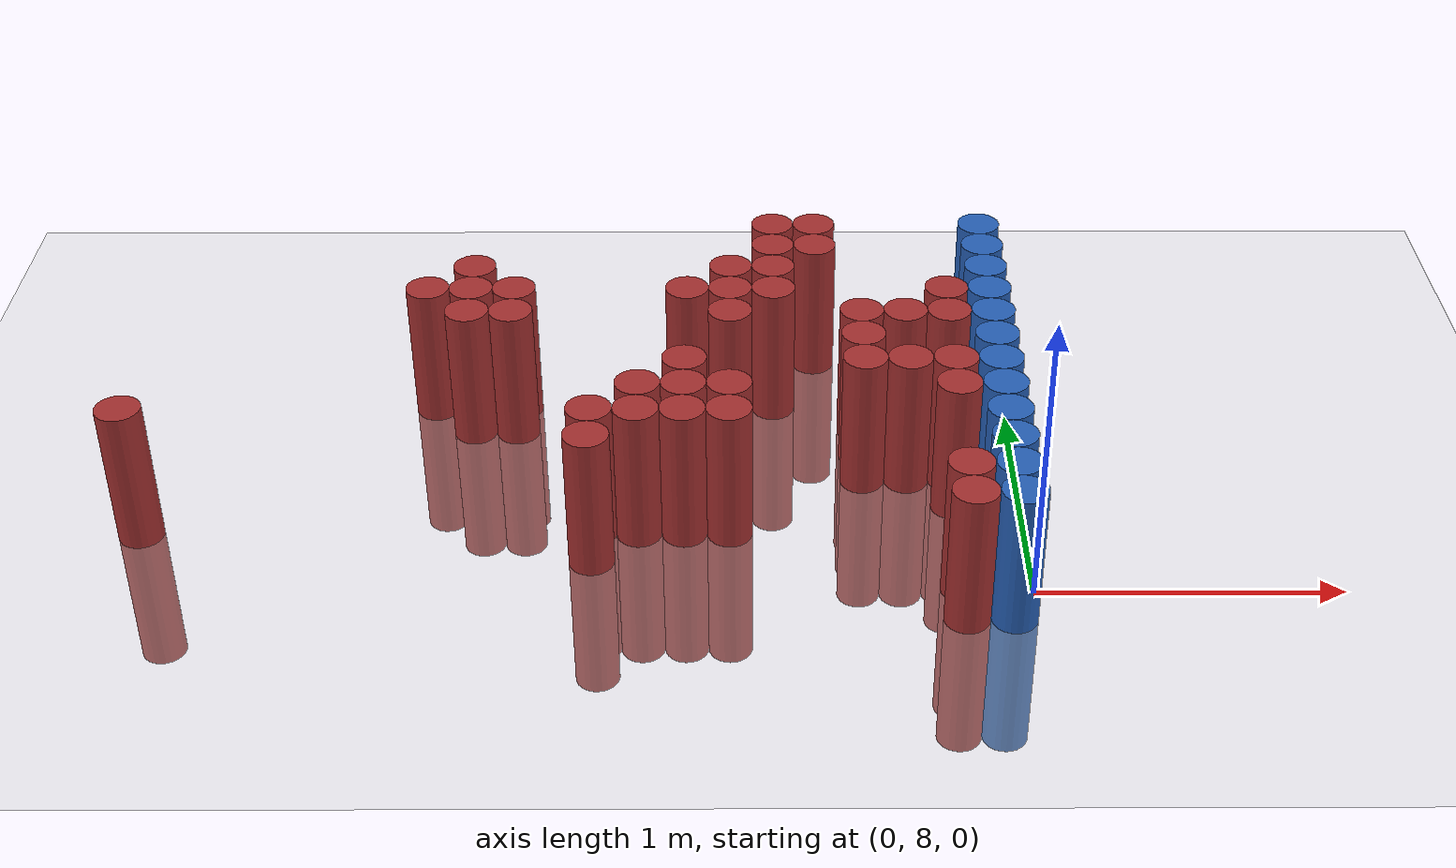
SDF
<sdf version="1.6">
 <world name="default">
  <model name="ground_plane">
   <static>1</static>
   <link name="link">
    <collision name="collision">
     <geometry><plane><normal>0 0 1</normal><size>100 100</size></plane></geometry>
     <surface><friction><ode><mu>100</mu><mu2>50</mu2></ode></friction></surface>
    </collision>
    <visual name="visual">
     <cast_shadows>0</cast_shadows>
     <geometry><plane><normal>0 0 1</normal><size>100 100</size></plane></geometry>
     <material>
      <script><uri>file://media/materials/scripts/gazebo.material</uri><name>Gazebo/Grey</name></script>
     </material>
    </visual>
   </link>
  </model>
  <model name="unit_cylinder_205">
   <static>1</static>
   <pose>-2.925000 8.325000 0.000000 0.000000 0.000000 0.000000</pose>
   <link name="link">
    <inertial>
     <mass>1</mass>
     <inertia><ixx>0.145833</ixx><ixy>0</ixy><ixz>0</ixz><iyy>0.145833</iyy><iyz>0</iyz><izz>0.125</izz></inertia>
    </inertial>
    <collision name="collision">
     <geometry><cylinder><radius>0.075000</radius><length>1</length></cylinder></geometry>
    </collision>
    <visual name="visual">
     <geometry><cylinder><radius>0.075000</radius><length>1</length></cylinder></geometry>
     <material>
      <ambient>0.648000 0.192000 0.192000 1</ambient>
      <diffuse>0.648000 0.192000 0.192000 1</diffuse>
     </material>
     <material>
      <script><name>Gazebo/Grey</name><uri>file://media/materials/scripts/gazebo.material</uri></script>
     </material>
    </visual>
   </link>
  </model>
  <model name="unit_cylinder_224">
   <static>1</static>
   <pose>-2.025000 9.075000 0.000000 0.000000 0.000000 0.000000</pose>
   <link name="link">
    <inertial>
     <mass>1</mass>
     <inertia><ixx>0.145833</ixx><ixy>0</ixy><ixz>0</ixz><iyy>0.145833</iyy><iyz>0</iyz><izz>0.125</izz></inertia>
    </inertial>
    <collision name="collision">
     <geometry><cylinder><radius>0.075000</radius><length>1</length></cylinder></geometry>
    </collision>
    <visual name="visual">
     <geometry><cylinder><radius>0.075000</radius><length>1</length></cylinder></geometry>
     <material>
      <ambient>0.648000 0.192000 0.192000 1</ambient>
      <diffuse>0.648000 0.192000 0.192000 1</diffuse>
     </material>
     <material>
      <script><name>Gazebo/Grey</name><uri>file://media/materials/scripts/gazebo.material</uri></script>
     </material>
    </visual>
   </link>
  </model>
  <model name="unit_cylinder_228">
   <static>1</static>
   <pose>-1.875000 8.925000 0.000000 0.000000 0.000000 0.000000</pose>
   <link name="link">
    <inertial>
     <mass>1</mass>
     <inertia><ixx>0.145833</ixx><ixy>0</ixy><ixz>0</ixz><iyy>0.145833</iyy><iyz>0</iyz><izz>0.125</izz></inertia>
    </inertial>
    <collision name="collision">
     <geometry><cylinder><radius>0.075000</radius><length>1</length></cylinder></geometry>
    </collision>
    <visual name="visual">
     <geometry><cylinder><radius>0.075000</radius><length>1</length></cylinder></geometry>
     <material>
      <ambient>0.648000 0.192000 0.192000 1</ambient>
      <diffuse>0.648000 0.192000 0.192000 1</diffuse>
     </material>
     <material>
      <script><name>Gazebo/Grey</name><uri>file://media/materials/scripts/gazebo.material</uri></script>
     </material>
    </visual>
   </link>
  </model>
  <model name="unit_cylinder_229">
   <static>1</static>
   <pose>-1.875000 9.075000 0.000000 0.000000 0.000000 0.000000</pose>
   <link name="link">
    <inertial>
     <mass>1</mass>
     <inertia><ixx>0.145833</ixx><ixy>0</ixy><ixz>0</ixz><iyy>0.145833</iyy><iyz>0</iyz><izz>0.125</izz></inertia>
    </inertial>
    <collision name="collision">
     <geometry><cylinder><radius>0.075000</radius><length>1</length></cylinder></geometry>
    </collision>
    <visual name="visual">
     <geometry><cylinder><radius>0.075000</radius><length>1</length></cylinder></geometry>
     <material>
      <ambient>0.648000 0.192000 0.192000 1</ambient>
      <diffuse>0.648000 0.192000 0.192000 1</diffuse>
     </material>
     <material>
      <script><name>Gazebo/Grey</name><uri>file://media/materials/scripts/gazebo.material</uri></script>
     </material>
    </visual>
   </link>
  </model>
  <model name="unit_cylinder_230">
   <static>1</static>
   <pose>-1.875000 9.225000 0.000000 0.000000 0.000000 0.000000</pose>
   <link name="link">
    <inertial>
     <mass>1</mass>
     <inertia><ixx>0.145833</ixx><ixy>0</ixy><ixz>0</ixz><iyy>0.145833</iyy><iyz>0</iyz><izz>0.125</izz></inertia>
    </inertial>
    <collision name="collision">
     <geometry><cylinder><radius>0.075000</radius><length>1</length></cylinder></geometry>
    </collision>
    <visual name="visual">
     <geometry><cylinder><radius>0.075000</radius><length>1</length></cylinder></geometry>
     <material>
      <ambient>0.648000 0.192000 0.192000 1</ambient>
      <diffuse>0.648000 0.192000 0.192000 1</diffuse>
     </material>
     <material>
      <script><name>Gazebo/Grey</name><uri>file://media/materials/scripts/gazebo.material</uri></script>
     </material>
    </visual>
   </link>
  </model>
  <model name="unit_cylinder_237">
   <static>1</static>
   <pose>-1.725000 8.925000 0.000000 0.000000 0.000000 0.000000</pose>
   <link name="link">
    <inertial>
     <mass>1</mass>
     <inertia><ixx>0.145833</ixx><ixy>0</ixy><ixz>0</ixz><iyy>0.145833</iyy><iyz>0</iyz><izz>0.125</izz></inertia>
    </inertial>
    <collision name="collision">
     <geometry><cylinder><radius>0.075000</radius><length>1</length></cylinder></geometry>
    </collision>
    <visual name="visual">
     <geometry><cylinder><radius>0.075000</radius><length>1</length></cylinder></geometry>
     <material>
      <ambient>0.648000 0.192000 0.192000 1</ambient>
      <diffuse>0.648000 0.192000 0.192000 1</diffuse>
     </material>
     <material>
      <script><name>Gazebo/Grey</name><uri>file://media/materials/scripts/gazebo.material</uri></script>
     </material>
    </visual>
   </link>
  </model>
  <model name="unit_cylinder_238">
   <static>1</static>
   <pose>-1.725000 9.075000 0.000000 0.000000 0.000000 0.000000</pose>
   <link name="link">
    <inertial>
     <mass>1</mass>
     <inertia><ixx>0.145833</ixx><ixy>0</ixy><ixz>0</ixz><iyy>0.145833</iyy><iyz>0</iyz><izz>0.125</izz></inertia>
    </inertial>
    <collision name="collision">
     <geometry><cylinder><radius>0.075000</radius><length>1</length></cylinder></geometry>
    </collision>
    <visual name="visual">
     <geometry><cylinder><radius>0.075000</radius><length>1</length></cylinder></geometry>
     <material>
      <ambient>0.648000 0.192000 0.192000 1</ambient>
      <diffuse>0.648000 0.192000 0.192000 1</diffuse>
     </material>
     <material>
      <script><name>Gazebo/Grey</name><uri>file://media/materials/scripts/gazebo.material</uri></script>
     </material>
    </visual>
   </link>
  </model>
  <model name="unit_cylinder_247">
   <static>1</static>
   <pose>-1.425000 8.175000 0.000000 0.000000 0.000000 0.000000</pose>
   <link name="link">
    <inertial>
     <mass>1</mass>
     <inertia><ixx>0.145833</ixx><ixy>0</ixy><ixz>0</ixz><iyy>0.145833</iyy><iyz>0</iyz><izz>0.125</izz></inertia>
    </inertial>
    <collision name="collision">
     <geometry><cylinder><radius>0.075000</radius><length>1</length></cylinder></geometry>
    </collision>
    <visual name="visual">
     <geometry><cylinder><radius>0.075000</radius><length>1</length></cylinder></geometry>
     <material>
      <ambient>0.648000 0.192000 0.192000 1</ambient>
      <diffuse>0.648000 0.192000 0.192000 1</diffuse>
     </material>
     <material>
      <script><name>Gazebo/Grey</name><uri>file://media/materials/scripts/gazebo.material</uri></script>
     </material>
    </visual>
   </link>
  </model>
  <model name="unit_cylinder_248">
   <static>1</static>
   <pose>-1.425000 8.325000 0.000000 0.000000 0.000000 0.000000</pose>
   <link name="link">
    <inertial>
     <mass>1</mass>
     <inertia><ixx>0.145833</ixx><ixy>0</ixy><ixz>0</ixz><iyy>0.145833</iyy><iyz>0</iyz><izz>0.125</izz></inertia>
    </inertial>
    <collision name="collision">
     <geometry><cylinder><radius>0.075000</radius><length>1</length></cylinder></geometry>
    </collision>
    <visual name="visual">
     <geometry><cylinder><radius>0.075000</radius><length>1</length></cylinder></geometry>
     <material>
      <ambient>0.648000 0.192000 0.192000 1</ambient>
      <diffuse>0.648000 0.192000 0.192000 1</diffuse>
     </material>
     <material>
      <script><name>Gazebo/Grey</name><uri>file://media/materials/scripts/gazebo.material</uri></script>
     </material>
    </visual>
   </link>
  </model>
  <model name="unit_cylinder_254">
   <static>1</static>
   <pose>-1.275000 8.325000 0.000000 0.000000 0.000000 0.000000</pose>
   <link name="link">
    <inertial>
     <mass>1</mass>
     <inertia><ixx>0.145833</ixx><ixy>0</ixy><ixz>0</ixz><iyy>0.145833</iyy><iyz>0</iyz><izz>0.125</izz></inertia>
    </inertial>
    <collision name="collision">
     <geometry><cylinder><radius>0.075000</radius><length>1</length></cylinder></geometry>
    </collision>
    <visual name="visual">
     <geometry><cylinder><radius>0.075000</radius><length>1</length></cylinder></geometry>
     <material>
      <ambient>0.648000 0.192000 0.192000 1</ambient>
      <diffuse>0.648000 0.192000 0.192000 1</diffuse>
     </material>
     <material>
      <script><name>Gazebo/Grey</name><uri>file://media/materials/scripts/gazebo.material</uri></script>
     </material>
    </visual>
   </link>
  </model>
  <model name="unit_cylinder_255">
   <static>1</static>
   <pose>-1.275000 8.475000 0.000000 0.000000 0.000000 0.000000</pose>
   <link name="link">
    <inertial>
     <mass>1</mass>
     <inertia><ixx>0.145833</ixx><ixy>0</ixy><ixz>0</ixz><iyy>0.145833</iyy><iyz>0</iyz><izz>0.125</izz></inertia>
    </inertial>
    <collision name="collision">
     <geometry><cylinder><radius>0.075000</radius><length>1</length></cylinder></geometry>
    </collision>
    <visual name="visual">
     <geometry><cylinder><radius>0.075000</radius><length>1</length></cylinder></geometry>
     <material>
      <ambient>0.648000 0.192000 0.192000 1</ambient>
      <diffuse>0.648000 0.192000 0.192000 1</diffuse>
     </material>
     <material>
      <script><name>Gazebo/Grey</name><uri>file://media/materials/scripts/gazebo.material</uri></script>
     </material>
    </visual>
   </link>
  </model>
  <model name="unit_cylinder_257">
   <static>1</static>
   <pose>-1.125000 8.325000 0.000000 0.000000 0.000000 0.000000</pose>
   <link name="link">
    <inertial>
     <mass>1</mass>
     <inertia><ixx>0.145833</ixx><ixy>0</ixy><ixz>0</ixz><iyy>0.145833</iyy><iyz>0</iyz><izz>0.125</izz></inertia>
    </inertial>
    <collision name="collision">
     <geometry><cylinder><radius>0.075000</radius><length>1</length></cylinder></geometry>
    </collision>
    <visual name="visual">
     <geometry><cylinder><radius>0.075000</radius><length>1</length></cylinder></geometry>
     <material>
      <ambient>0.648000 0.192000 0.192000 1</ambient>
      <diffuse>0.648000 0.192000 0.192000 1</diffuse>
     </material>
     <material>
      <script><name>Gazebo/Grey</name><uri>file://media/materials/scripts/gazebo.material</uri></script>
     </material>
    </visual>
   </link>
  </model>
  <model name="unit_cylinder_258">
   <static>1</static>
   <pose>-1.125000 8.475000 0.000000 0.000000 0.000000 0.000000</pose>
   <link name="link">
    <inertial>
     <mass>1</mass>
     <inertia><ixx>0.145833</ixx><ixy>0</ixy><ixz>0</ixz><iyy>0.145833</iyy><iyz>0</iyz><izz>0.125</izz></inertia>
    </inertial>
    <collision name="collision">
     <geometry><cylinder><radius>0.075000</radius><length>1</length></cylinder></geometry>
    </collision>
    <visual name="visual">
     <geometry><cylinder><radius>0.075000</radius><length>1</length></cylinder></geometry>
     <material>
      <ambient>0.648000 0.192000 0.192000 1</ambient>
      <diffuse>0.648000 0.192000 0.192000 1</diffuse>
     </material>
     <material>
      <script><name>Gazebo/Grey</name><uri>file://media/materials/scripts/gazebo.material</uri></script>
     </material>
    </visual>
   </link>
  </model>
  <model name="unit_cylinder_259">
   <static>1</static>
   <pose>-1.125000 8.625000 0.000000 0.000000 0.000000 0.000000</pose>
   <link name="link">
    <inertial>
     <mass>1</mass>
     <inertia><ixx>0.145833</ixx><ixy>0</ixy><ixz>0</ixz><iyy>0.145833</iyy><iyz>0</iyz><izz>0.125</izz></inertia>
    </inertial>
    <collision name="collision">
     <geometry><cylinder><radius>0.075000</radius><length>1</length></cylinder></geometry>
    </collision>
    <visual name="visual">
     <geometry><cylinder><radius>0.075000</radius><length>1</length></cylinder></geometry>
     <material>
      <ambient>0.648000 0.192000 0.192000 1</ambient>
      <diffuse>0.648000 0.192000 0.192000 1</diffuse>
     </material>
     <material>
      <script><name>Gazebo/Grey</name><uri>file://media/materials/scripts/gazebo.material</uri></script>
     </material>
    </visual>
   </link>
  </model>
  <model name="unit_cylinder_260">
   <static>1</static>
   <pose>-1.125000 9.075000 0.000000 0.000000 0.000000 0.000000</pose>
   <link name="link">
    <inertial>
     <mass>1</mass>
     <inertia><ixx>0.145833</ixx><ixy>0</ixy><ixz>0</ixz><iyy>0.145833</iyy><iyz>0</iyz><izz>0.125</izz></inertia>
    </inertial>
    <collision name="collision">
     <geometry><cylinder><radius>0.075000</radius><length>1</length></cylinder></geometry>
    </collision>
    <visual name="visual">
     <geometry><cylinder><radius>0.075000</radius><length>1</length></cylinder></geometry>
     <material>
      <ambient>0.648000 0.192000 0.192000 1</ambient>
      <diffuse>0.648000 0.192000 0.192000 1</diffuse>
     </material>
     <material>
      <script><name>Gazebo/Grey</name><uri>file://media/materials/scripts/gazebo.material</uri></script>
     </material>
    </visual>
   </link>
  </model>
  <model name="unit_cylinder_265">
   <static>1</static>
   <pose>-0.975000 8.325000 0.000000 0.000000 0.000000 0.000000</pose>
   <link name="link">
    <inertial>
     <mass>1</mass>
     <inertia><ixx>0.145833</ixx><ixy>0</ixy><ixz>0</ixz><iyy>0.145833</iyy><iyz>0</iyz><izz>0.125</izz></inertia>
    </inertial>
    <collision name="collision">
     <geometry><cylinder><radius>0.075000</radius><length>1</length></cylinder></geometry>
    </collision>
    <visual name="visual">
     <geometry><cylinder><radius>0.075000</radius><length>1</length></cylinder></geometry>
     <material>
      <ambient>0.648000 0.192000 0.192000 1</ambient>
      <diffuse>0.648000 0.192000 0.192000 1</diffuse>
     </material>
     <material>
      <script><name>Gazebo/Grey</name><uri>file://media/materials/scripts/gazebo.material</uri></script>
     </material>
    </visual>
   </link>
  </model>
  <model name="unit_cylinder_266">
   <static>1</static>
   <pose>-0.975000 8.475000 0.000000 0.000000 0.000000 0.000000</pose>
   <link name="link">
    <inertial>
     <mass>1</mass>
     <inertia><ixx>0.145833</ixx><ixy>0</ixy><ixz>0</ixz><iyy>0.145833</iyy><iyz>0</iyz><izz>0.125</izz></inertia>
    </inertial>
    <collision name="collision">
     <geometry><cylinder><radius>0.075000</radius><length>1</length></cylinder></geometry>
    </collision>
    <visual name="visual">
     <geometry><cylinder><radius>0.075000</radius><length>1</length></cylinder></geometry>
     <material>
      <ambient>0.648000 0.192000 0.192000 1</ambient>
      <diffuse>0.648000 0.192000 0.192000 1</diffuse>
     </material>
     <material>
      <script><name>Gazebo/Grey</name><uri>file://media/materials/scripts/gazebo.material</uri></script>
     </material>
    </visual>
   </link>
  </model>
  <model name="unit_cylinder_267">
   <static>1</static>
   <pose>-0.975000 8.925000 0.000000 0.000000 0.000000 0.000000</pose>
   <link name="link">
    <inertial>
     <mass>1</mass>
     <inertia><ixx>0.145833</ixx><ixy>0</ixy><ixz>0</ixz><iyy>0.145833</iyy><iyz>0</iyz><izz>0.125</izz></inertia>
    </inertial>
    <collision name="collision">
     <geometry><cylinder><radius>0.075000</radius><length>1</length></cylinder></geometry>
    </collision>
    <visual name="visual">
     <geometry><cylinder><radius>0.075000</radius><length>1</length></cylinder></geometry>
     <material>
      <ambient>0.648000 0.192000 0.192000 1</ambient>
      <diffuse>0.648000 0.192000 0.192000 1</diffuse>
     </material>
     <material>
      <script><name>Gazebo/Grey</name><uri>file://media/materials/scripts/gazebo.material</uri></script>
     </material>
    </visual>
   </link>
  </model>
  <model name="unit_cylinder_268">
   <static>1</static>
   <pose>-0.975000 9.075000 0.000000 0.000000 0.000000 0.000000</pose>
   <link name="link">
    <inertial>
     <mass>1</mass>
     <inertia><ixx>0.145833</ixx><ixy>0</ixy><ixz>0</ixz><iyy>0.145833</iyy><iyz>0</iyz><izz>0.125</izz></inertia>
    </inertial>
    <collision name="collision">
     <geometry><cylinder><radius>0.075000</radius><length>1</length></cylinder></geometry>
    </collision>
    <visual name="visual">
     <geometry><cylinder><radius>0.075000</radius><length>1</length></cylinder></geometry>
     <material>
      <ambient>0.648000 0.192000 0.192000 1</ambient>
      <diffuse>0.648000 0.192000 0.192000 1</diffuse>
     </material>
     <material>
      <script><name>Gazebo/Grey</name><uri>file://media/materials/scripts/gazebo.material</uri></script>
     </material>
    </visual>
   </link>
  </model>
  <model name="unit_cylinder_269">
   <static>1</static>
   <pose>-0.975000 9.225000 0.000000 0.000000 0.000000 0.000000</pose>
   <link name="link">
    <inertial>
     <mass>1</mass>
     <inertia><ixx>0.145833</ixx><ixy>0</ixy><ixz>0</ixz><iyy>0.145833</iyy><iyz>0</iyz><izz>0.125</izz></inertia>
    </inertial>
    <collision name="collision">
     <geometry><cylinder><radius>0.075000</radius><length>1</length></cylinder></geometry>
    </collision>
    <visual name="visual">
     <geometry><cylinder><radius>0.075000</radius><length>1</length></cylinder></geometry>
     <material>
      <ambient>0.648000 0.192000 0.192000 1</ambient>
      <diffuse>0.648000 0.192000 0.192000 1</diffuse>
     </material>
     <material>
      <script><name>Gazebo/Grey</name><uri>file://media/materials/scripts/gazebo.material</uri></script>
     </material>
    </visual>
   </link>
  </model>
  <model name="unit_cylinder_273">
   <static>1</static>
   <pose>-0.825000 9.075000 0.000000 0.000000 0.000000 0.000000</pose>
   <link name="link">
    <inertial>
     <mass>1</mass>
     <inertia><ixx>0.145833</ixx><ixy>0</ixy><ixz>0</ixz><iyy>0.145833</iyy><iyz>0</iyz><izz>0.125</izz></inertia>
    </inertial>
    <collision name="collision">
     <geometry><cylinder><radius>0.075000</radius><length>1</length></cylinder></geometry>
    </collision>
    <visual name="visual">
     <geometry><cylinder><radius>0.075000</radius><length>1</length></cylinder></geometry>
     <material>
      <ambient>0.648000 0.192000 0.192000 1</ambient>
      <diffuse>0.648000 0.192000 0.192000 1</diffuse>
     </material>
     <material>
      <script><name>Gazebo/Grey</name><uri>file://media/materials/scripts/gazebo.material</uri></script>
     </material>
    </visual>
   </link>
  </model>
  <model name="unit_cylinder_274">
   <static>1</static>
   <pose>-0.825000 9.225000 0.000000 0.000000 0.000000 0.000000</pose>
   <link name="link">
    <inertial>
     <mass>1</mass>
     <inertia><ixx>0.145833</ixx><ixy>0</ixy><ixz>0</ixz><iyy>0.145833</iyy><iyz>0</iyz><izz>0.125</izz></inertia>
    </inertial>
    <collision name="collision">
     <geometry><cylinder><radius>0.075000</radius><length>1</length></cylinder></geometry>
    </collision>
    <visual name="visual">
     <geometry><cylinder><radius>0.075000</radius><length>1</length></cylinder></geometry>
     <material>
      <ambient>0.648000 0.192000 0.192000 1</ambient>
      <diffuse>0.648000 0.192000 0.192000 1</diffuse>
     </material>
     <material>
      <script><name>Gazebo/Grey</name><uri>file://media/materials/scripts/gazebo.material</uri></script>
     </material>
    </visual>
   </link>
  </model>
  <model name="unit_cylinder_275">
   <static>1</static>
   <pose>-0.825000 9.375000 0.000000 0.000000 0.000000 0.000000</pose>
   <link name="link">
    <inertial>
     <mass>1</mass>
     <inertia><ixx>0.145833</ixx><ixy>0</ixy><ixz>0</ixz><iyy>0.145833</iyy><iyz>0</iyz><izz>0.125</izz></inertia>
    </inertial>
    <collision name="collision">
     <geometry><cylinder><radius>0.075000</radius><length>1</length></cylinder></geometry>
    </collision>
    <visual name="visual">
     <geometry><cylinder><radius>0.075000</radius><length>1</length></cylinder></geometry>
     <material>
      <ambient>0.648000 0.192000 0.192000 1</ambient>
      <diffuse>0.648000 0.192000 0.192000 1</diffuse>
     </material>
     <material>
      <script><name>Gazebo/Grey</name><uri>file://media/materials/scripts/gazebo.material</uri></script>
     </material>
    </visual>
   </link>
  </model>
  <model name="unit_cylinder_276">
   <static>1</static>
   <pose>-0.825000 9.525000 0.000000 0.000000 0.000000 0.000000</pose>
   <link name="link">
    <inertial>
     <mass>1</mass>
     <inertia><ixx>0.145833</ixx><ixy>0</ixy><ixz>0</ixz><iyy>0.145833</iyy><iyz>0</iyz><izz>0.125</izz></inertia>
    </inertial>
    <collision name="collision">
     <geometry><cylinder><radius>0.075000</radius><length>1</length></cylinder></geometry>
    </collision>
    <visual name="visual">
     <geometry><cylinder><radius>0.075000</radius><length>1</length></cylinder></geometry>
     <material>
      <ambient>0.648000 0.192000 0.192000 1</ambient>
      <diffuse>0.648000 0.192000 0.192000 1</diffuse>
     </material>
     <material>
      <script><name>Gazebo/Grey</name><uri>file://media/materials/scripts/gazebo.material</uri></script>
     </material>
    </visual>
   </link>
  </model>
  <model name="unit_cylinder_278">
   <static>1</static>
   <pose>-0.675000 9.375000 0.000000 0.000000 0.000000 0.000000</pose>
   <link name="link">
    <inertial>
     <mass>1</mass>
     <inertia><ixx>0.145833</ixx><ixy>0</ixy><ixz>0</ixz><iyy>0.145833</iyy><iyz>0</iyz><izz>0.125</izz></inertia>
    </inertial>
    <collision name="collision">
     <geometry><cylinder><radius>0.075000</radius><length>1</length></cylinder></geometry>
    </collision>
    <visual name="visual">
     <geometry><cylinder><radius>0.075000</radius><length>1</length></cylinder></geometry>
     <material>
      <ambient>0.648000 0.192000 0.192000 1</ambient>
      <diffuse>0.648000 0.192000 0.192000 1</diffuse>
     </material>
     <material>
      <script><name>Gazebo/Grey</name><uri>file://media/materials/scripts/gazebo.material</uri></script>
     </material>
    </visual>
   </link>
  </model>
  <model name="unit_cylinder_279">
   <static>1</static>
   <pose>-0.675000 9.525000 0.000000 0.000000 0.000000 0.000000</pose>
   <link name="link">
    <inertial>
     <mass>1</mass>
     <inertia><ixx>0.145833</ixx><ixy>0</ixy><ixz>0</ixz><iyy>0.145833</iyy><iyz>0</iyz><izz>0.125</izz></inertia>
    </inertial>
    <collision name="collision">
     <geometry><cylinder><radius>0.075000</radius><length>1</length></cylinder></geometry>
    </collision>
    <visual name="visual">
     <geometry><cylinder><radius>0.075000</radius><length>1</length></cylinder></geometry>
     <material>
      <ambient>0.648000 0.192000 0.192000 1</ambient>
      <diffuse>0.648000 0.192000 0.192000 1</diffuse>
     </material>
     <material>
      <script><name>Gazebo/Grey</name><uri>file://media/materials/scripts/gazebo.material</uri></script>
     </material>
    </visual>
   </link>
  </model>
  <model name="unit_cylinder_282">
   <static>1</static>
   <pose>-0.525000 8.625000 0.000000 0.000000 0.000000 0.000000</pose>
   <link name="link">
    <inertial>
     <mass>1</mass>
     <inertia><ixx>0.145833</ixx><ixy>0</ixy><ixz>0</ixz><iyy>0.145833</iyy><iyz>0</iyz><izz>0.125</izz></inertia>
    </inertial>
    <collision name="collision">
     <geometry><cylinder><radius>0.075000</radius><length>1</length></cylinder></geometry>
    </collision>
    <visual name="visual">
     <geometry><cylinder><radius>0.075000</radius><length>1</length></cylinder></geometry>
     <material>
      <ambient>0.648000 0.192000 0.192000 1</ambient>
      <diffuse>0.648000 0.192000 0.192000 1</diffuse>
     </material>
     <material>
      <script><name>Gazebo/Grey</name><uri>file://media/materials/scripts/gazebo.material</uri></script>
     </material>
    </visual>
   </link>
  </model>
  <model name="unit_cylinder_283">
   <static>1</static>
   <pose>-0.525000 8.775000 0.000000 0.000000 0.000000 0.000000</pose>
   <link name="link">
    <inertial>
     <mass>1</mass>
     <inertia><ixx>0.145833</ixx><ixy>0</ixy><ixz>0</ixz><iyy>0.145833</iyy><iyz>0</iyz><izz>0.125</izz></inertia>
    </inertial>
    <collision name="collision">
     <geometry><cylinder><radius>0.075000</radius><length>1</length></cylinder></geometry>
    </collision>
    <visual name="visual">
     <geometry><cylinder><radius>0.075000</radius><length>1</length></cylinder></geometry>
     <material>
      <ambient>0.648000 0.192000 0.192000 1</ambient>
      <diffuse>0.648000 0.192000 0.192000 1</diffuse>
     </material>
     <material>
      <script><name>Gazebo/Grey</name><uri>file://media/materials/scripts/gazebo.material</uri></script>
     </material>
    </visual>
   </link>
  </model>
  <model name="unit_cylinder_284">
   <static>1</static>
   <pose>-0.525000 8.925000 0.000000 0.000000 0.000000 0.000000</pose>
   <link name="link">
    <inertial>
     <mass>1</mass>
     <inertia><ixx>0.145833</ixx><ixy>0</ixy><ixz>0</ixz><iyy>0.145833</iyy><iyz>0</iyz><izz>0.125</izz></inertia>
    </inertial>
    <collision name="collision">
     <geometry><cylinder><radius>0.075000</radius><length>1</length></cylinder></geometry>
    </collision>
    <visual name="visual">
     <geometry><cylinder><radius>0.075000</radius><length>1</length></cylinder></geometry>
     <material>
      <ambient>0.648000 0.192000 0.192000 1</ambient>
      <diffuse>0.648000 0.192000 0.192000 1</diffuse>
     </material>
     <material>
      <script><name>Gazebo/Grey</name><uri>file://media/materials/scripts/gazebo.material</uri></script>
     </material>
    </visual>
   </link>
  </model>
  <model name="unit_cylinder_292">
   <static>1</static>
   <pose>-0.375000 8.625000 0.000000 0.000000 0.000000 0.000000</pose>
   <link name="link">
    <inertial>
     <mass>1</mass>
     <inertia><ixx>0.145833</ixx><ixy>0</ixy><ixz>0</ixz><iyy>0.145833</iyy><iyz>0</iyz><izz>0.125</izz></inertia>
    </inertial>
    <collision name="collision">
     <geometry><cylinder><radius>0.075000</radius><length>1</length></cylinder></geometry>
    </collision>
    <visual name="visual">
     <geometry><cylinder><radius>0.075000</radius><length>1</length></cylinder></geometry>
     <material>
      <ambient>0.648000 0.192000 0.192000 1</ambient>
      <diffuse>0.648000 0.192000 0.192000 1</diffuse>
     </material>
     <material>
      <script><name>Gazebo/Grey</name><uri>file://media/materials/scripts/gazebo.material</uri></script>
     </material>
    </visual>
   </link>
  </model>
  <model name="unit_cylinder_293">
   <static>1</static>
   <pose>-0.375000 8.925000 0.000000 0.000000 0.000000 0.000000</pose>
   <link name="link">
    <inertial>
     <mass>1</mass>
     <inertia><ixx>0.145833</ixx><ixy>0</ixy><ixz>0</ixz><iyy>0.145833</iyy><iyz>0</iyz><izz>0.125</izz></inertia>
    </inertial>
    <collision name="collision">
     <geometry><cylinder><radius>0.075000</radius><length>1</length></cylinder></geometry>
    </collision>
    <visual name="visual">
     <geometry><cylinder><radius>0.075000</radius><length>1</length></cylinder></geometry>
     <material>
      <ambient>0.648000 0.192000 0.192000 1</ambient>
      <diffuse>0.648000 0.192000 0.192000 1</diffuse>
     </material>
     <material>
      <script><name>Gazebo/Grey</name><uri>file://media/materials/scripts/gazebo.material</uri></script>
     </material>
    </visual>
   </link>
  </model>
  <model name="unit_cylinder_306">
   <static>1</static>
   <pose>-0.225000 7.875000 0.000000 0.000000 0.000000 0.000000</pose>
   <link name="link">
    <inertial>
     <mass>1</mass>
     <inertia><ixx>0.145833</ixx><ixy>0</ixy><ixz>0</ixz><iyy>0.145833</iyy><iyz>0</iyz><izz>0.125</izz></inertia>
    </inertial>
    <collision name="collision">
     <geometry><cylinder><radius>0.075000</radius><length>1</length></cylinder></geometry>
    </collision>
    <visual name="visual">
     <geometry><cylinder><radius>0.075000</radius><length>1</length></cylinder></geometry>
     <material>
      <ambient>0.648000 0.192000 0.192000 1</ambient>
      <diffuse>0.648000 0.192000 0.192000 1</diffuse>
     </material>
     <material>
      <script><name>Gazebo/Grey</name><uri>file://media/materials/scripts/gazebo.material</uri></script>
     </material>
    </visual>
   </link>
  </model>
  <model name="unit_cylinder_307">
   <static>1</static>
   <pose>-0.225000 8.025000 0.000000 0.000000 0.000000 0.000000</pose>
   <link name="link">
    <inertial>
     <mass>1</mass>
     <inertia><ixx>0.145833</ixx><ixy>0</ixy><ixz>0</ixz><iyy>0.145833</iyy><iyz>0</iyz><izz>0.125</izz></inertia>
    </inertial>
    <collision name="collision">
     <geometry><cylinder><radius>0.075000</radius><length>1</length></cylinder></geometry>
    </collision>
    <visual name="visual">
     <geometry><cylinder><radius>0.075000</radius><length>1</length></cylinder></geometry>
     <material>
      <ambient>0.648000 0.192000 0.192000 1</ambient>
      <diffuse>0.648000 0.192000 0.192000 1</diffuse>
     </material>
     <material>
      <script><name>Gazebo/Grey</name><uri>file://media/materials/scripts/gazebo.material</uri></script>
     </material>
    </visual>
   </link>
  </model>
  <model name="unit_cylinder_308">
   <static>1</static>
   <pose>-0.225000 8.475000 0.000000 0.000000 0.000000 0.000000</pose>
   <link name="link">
    <inertial>
     <mass>1</mass>
     <inertia><ixx>0.145833</ixx><ixy>0</ixy><ixz>0</ixz><iyy>0.145833</iyy><iyz>0</iyz><izz>0.125</izz></inertia>
    </inertial>
    <collision name="collision">
     <geometry><cylinder><radius>0.075000</radius><length>1</length></cylinder></geometry>
    </collision>
    <visual name="visual">
     <geometry><cylinder><radius>0.075000</radius><length>1</length></cylinder></geometry>
     <material>
      <ambient>0.648000 0.192000 0.192000 1</ambient>
      <diffuse>0.648000 0.192000 0.192000 1</diffuse>
     </material>
     <material>
      <script><name>Gazebo/Grey</name><uri>file://media/materials/scripts/gazebo.material</uri></script>
     </material>
    </visual>
   </link>
  </model>
  <model name="unit_cylinder_309">
   <static>1</static>
   <pose>-0.225000 8.625000 0.000000 0.000000 0.000000 0.000000</pose>
   <link name="link">
    <inertial>
     <mass>1</mass>
     <inertia><ixx>0.145833</ixx><ixy>0</ixy><ixz>0</ixz><iyy>0.145833</iyy><iyz>0</iyz><izz>0.125</izz></inertia>
    </inertial>
    <collision name="collision">
     <geometry><cylinder><radius>0.075000</radius><length>1</length></cylinder></geometry>
    </collision>
    <visual name="visual">
     <geometry><cylinder><radius>0.075000</radius><length>1</length></cylinder></geometry>
     <material>
      <ambient>0.648000 0.192000 0.192000 1</ambient>
      <diffuse>0.648000 0.192000 0.192000 1</diffuse>
     </material>
     <material>
      <script><name>Gazebo/Grey</name><uri>file://media/materials/scripts/gazebo.material</uri></script>
     </material>
    </visual>
   </link>
  </model>
  <model name="unit_cylinder_310">
   <static>1</static>
   <pose>-0.225000 8.925000 0.000000 0.000000 0.000000 0.000000</pose>
   <link name="link">
    <inertial>
     <mass>1</mass>
     <inertia><ixx>0.145833</ixx><ixy>0</ixy><ixz>0</ixz><iyy>0.145833</iyy><iyz>0</iyz><izz>0.125</izz></inertia>
    </inertial>
    <collision name="collision">
     <geometry><cylinder><radius>0.075000</radius><length>1</length></cylinder></geometry>
    </collision>
    <visual name="visual">
     <geometry><cylinder><radius>0.075000</radius><length>1</length></cylinder></geometry>
     <material>
      <ambient>0.648000 0.192000 0.192000 1</ambient>
      <diffuse>0.648000 0.192000 0.192000 1</diffuse>
     </material>
     <material>
      <script><name>Gazebo/Grey</name><uri>file://media/materials/scripts/gazebo.material</uri></script>
     </material>
    </visual>
   </link>
  </model>
  <model name="unit_cylinder_311">
   <static>1</static>
   <pose>-0.225000 9.075000 0.000000 0.000000 0.000000 0.000000</pose>
   <link name="link">
    <inertial>
     <mass>1</mass>
     <inertia><ixx>0.145833</ixx><ixy>0</ixy><ixz>0</ixz><iyy>0.145833</iyy><iyz>0</iyz><izz>0.125</izz></inertia>
    </inertial>
    <collision name="collision">
     <geometry><cylinder><radius>0.075000</radius><length>1</length></cylinder></geometry>
    </collision>
    <visual name="visual">
     <geometry><cylinder><radius>0.075000</radius><length>1</length></cylinder></geometry>
     <material>
      <ambient>0.648000 0.192000 0.192000 1</ambient>
      <diffuse>0.648000 0.192000 0.192000 1</diffuse>
     </material>
     <material>
      <script><name>Gazebo/Grey</name><uri>file://media/materials/scripts/gazebo.material</uri></script>
     </material>
    </visual>
   </link>
  </model>
  <model name="unit_cylinder_330">
   <static>1</static>
   <pose>-0.075000 7.875000 0.000000 0.000000 0.000000 0.000000</pose>
   <link name="link">
    <inertial>
     <mass>1</mass>
     <inertia><ixx>0.145833</ixx><ixy>0</ixy><ixz>0</ixz><iyy>0.145833</iyy><iyz>0</iyz><izz>0.125</izz></inertia>
    </inertial>
    <collision name="collision">
     <geometry><cylinder><radius>0.075000</radius><length>1</length></cylinder></geometry>
    </collision>
    <visual name="visual">
     <geometry><cylinder><radius>0.075000</radius><length>1</length></cylinder></geometry>
     <material>
      <ambient>0.152000 0.379000 0.720000 1</ambient>
      <diffuse>0.152000 0.379000 0.720000 1</diffuse>
     </material>
     <material>
      <script><name>Gazebo/Grey</name><uri>file://media/materials/scripts/gazebo.material</uri></script>
     </material>
    </visual>
   </link>
  </model>
  <model name="unit_cylinder_331">
   <static>1</static>
   <pose>-0.075000 8.025000 0.000000 0.000000 0.000000 0.000000</pose>
   <link name="link">
    <inertial>
     <mass>1</mass>
     <inertia><ixx>0.145833</ixx><ixy>0</ixy><ixz>0</ixz><iyy>0.145833</iyy><iyz>0</iyz><izz>0.125</izz></inertia>
    </inertial>
    <collision name="collision">
     <geometry><cylinder><radius>0.075000</radius><length>1</length></cylinder></geometry>
    </collision>
    <visual name="visual">
     <geometry><cylinder><radius>0.075000</radius><length>1</length></cylinder></geometry>
     <material>
      <ambient>0.152000 0.379000 0.720000 1</ambient>
      <diffuse>0.152000 0.379000 0.720000 1</diffuse>
     </material>
     <material>
      <script><name>Gazebo/Grey</name><uri>file://media/materials/scripts/gazebo.material</uri></script>
     </material>
    </visual>
   </link>
  </model>
  <model name="unit_cylinder_332">
   <static>1</static>
   <pose>-0.075000 8.175000 0.000000 0.000000 0.000000 0.000000</pose>
   <link name="link">
    <inertial>
     <mass>1</mass>
     <inertia><ixx>0.145833</ixx><ixy>0</ixy><ixz>0</ixz><iyy>0.145833</iyy><iyz>0</iyz><izz>0.125</izz></inertia>
    </inertial>
    <collision name="collision">
     <geometry><cylinder><radius>0.075000</radius><length>1</length></cylinder></geometry>
    </collision>
    <visual name="visual">
     <geometry><cylinder><radius>0.075000</radius><length>1</length></cylinder></geometry>
     <material>
      <ambient>0.152000 0.379000 0.720000 1</ambient>
      <diffuse>0.152000 0.379000 0.720000 1</diffuse>
     </material>
     <material>
      <script><name>Gazebo/Grey</name><uri>file://media/materials/scripts/gazebo.material</uri></script>
     </material>
    </visual>
   </link>
  </model>
  <model name="unit_cylinder_333">
   <static>1</static>
   <pose>-0.075000 8.325000 0.000000 0.000000 0.000000 0.000000</pose>
   <link name="link">
    <inertial>
     <mass>1</mass>
     <inertia><ixx>0.145833</ixx><ixy>0</ixy><ixz>0</ixz><iyy>0.145833</iyy><iyz>0</iyz><izz>0.125</izz></inertia>
    </inertial>
    <collision name="collision">
     <geometry><cylinder><radius>0.075000</radius><length>1</length></cylinder></geometry>
    </collision>
    <visual name="visual">
     <geometry><cylinder><radius>0.075000</radius><length>1</length></cylinder></geometry>
     <material>
      <ambient>0.152000 0.379000 0.720000 1</ambient>
      <diffuse>0.152000 0.379000 0.720000 1</diffuse>
     </material>
     <material>
      <script><name>Gazebo/Grey</name><uri>file://media/materials/scripts/gazebo.material</uri></script>
     </material>
    </visual>
   </link>
  </model>
  <model name="unit_cylinder_334">
   <static>1</static>
   <pose>-0.075000 8.475000 0.000000 0.000000 0.000000 0.000000</pose>
   <link name="link">
    <inertial>
     <mass>1</mass>
     <inertia><ixx>0.145833</ixx><ixy>0</ixy><ixz>0</ixz><iyy>0.145833</iyy><iyz>0</iyz><izz>0.125</izz></inertia>
    </inertial>
    <collision name="collision">
     <geometry><cylinder><radius>0.075000</radius><length>1</length></cylinder></geometry>
    </collision>
    <visual name="visual">
     <geometry><cylinder><radius>0.075000</radius><length>1</length></cylinder></geometry>
     <material>
      <ambient>0.152000 0.379000 0.720000 1</ambient>
      <diffuse>0.152000 0.379000 0.720000 1</diffuse>
     </material>
     <material>
      <script><name>Gazebo/Grey</name><uri>file://media/materials/scripts/gazebo.material</uri></script>
     </material>
    </visual>
   </link>
  </model>
  <model name="unit_cylinder_335">
   <static>1</static>
   <pose>-0.075000 8.625000 0.000000 0.000000 0.000000 0.000000</pose>
   <link name="link">
    <inertial>
     <mass>1</mass>
     <inertia><ixx>0.145833</ixx><ixy>0</ixy><ixz>0</ixz><iyy>0.145833</iyy><iyz>0</iyz><izz>0.125</izz></inertia>
    </inertial>
    <collision name="collision">
     <geometry><cylinder><radius>0.075000</radius><length>1</length></cylinder></geometry>
    </collision>
    <visual name="visual">
     <geometry><cylinder><radius>0.075000</radius><length>1</length></cylinder></geometry>
     <material>
      <ambient>0.152000 0.379000 0.720000 1</ambient>
      <diffuse>0.152000 0.379000 0.720000 1</diffuse>
     </material>
     <material>
      <script><name>Gazebo/Grey</name><uri>file://media/materials/scripts/gazebo.material</uri></script>
     </material>
    </visual>
   </link>
  </model>
  <model name="unit_cylinder_336">
   <static>1</static>
   <pose>-0.075000 8.775000 0.000000 0.000000 0.000000 0.000000</pose>
   <link name="link">
    <inertial>
     <mass>1</mass>
     <inertia><ixx>0.145833</ixx><ixy>0</ixy><ixz>0</ixz><iyy>0.145833</iyy><iyz>0</iyz><izz>0.125</izz></inertia>
    </inertial>
    <collision name="collision">
     <geometry><cylinder><radius>0.075000</radius><length>1</length></cylinder></geometry>
    </collision>
    <visual name="visual">
     <geometry><cylinder><radius>0.075000</radius><length>1</length></cylinder></geometry>
     <material>
      <ambient>0.152000 0.379000 0.720000 1</ambient>
      <diffuse>0.152000 0.379000 0.720000 1</diffuse>
     </material>
     <material>
      <script><name>Gazebo/Grey</name><uri>file://media/materials/scripts/gazebo.material</uri></script>
     </material>
    </visual>
   </link>
  </model>
  <model name="unit_cylinder_337">
   <static>1</static>
   <pose>-0.075000 8.925000 0.000000 0.000000 0.000000 0.000000</pose>
   <link name="link">
    <inertial>
     <mass>1</mass>
     <inertia><ixx>0.145833</ixx><ixy>0</ixy><ixz>0</ixz><iyy>0.145833</iyy><iyz>0</iyz><izz>0.125</izz></inertia>
    </inertial>
    <collision name="collision">
     <geometry><cylinder><radius>0.075000</radius><length>1</length></cylinder></geometry>
    </collision>
    <visual name="visual">
     <geometry><cylinder><radius>0.075000</radius><length>1</length></cylinder></geometry>
     <material>
      <ambient>0.152000 0.379000 0.720000 1</ambient>
      <diffuse>0.152000 0.379000 0.720000 1</diffuse>
     </material>
     <material>
      <script><name>Gazebo/Grey</name><uri>file://media/materials/scripts/gazebo.material</uri></script>
     </material>
    </visual>
   </link>
  </model>
  <model name="unit_cylinder_338">
   <static>1</static>
   <pose>-0.075000 9.075000 0.000000 0.000000 0.000000 0.000000</pose>
   <link name="link">
    <inertial>
     <mass>1</mass>
     <inertia><ixx>0.145833</ixx><ixy>0</ixy><ixz>0</ixz><iyy>0.145833</iyy><iyz>0</iyz><izz>0.125</izz></inertia>
    </inertial>
    <collision name="collision">
     <geometry><cylinder><radius>0.075000</radius><length>1</length></cylinder></geometry>
    </collision>
    <visual name="visual">
     <geometry><cylinder><radius>0.075000</radius><length>1</length></cylinder></geometry>
     <material>
      <ambient>0.152000 0.379000 0.720000 1</ambient>
      <diffuse>0.152000 0.379000 0.720000 1</diffuse>
     </material>
     <material>
      <script><name>Gazebo/Grey</name><uri>file://media/materials/scripts/gazebo.material</uri></script>
     </material>
    </visual>
   </link>
  </model>
  <model name="unit_cylinder_339">
   <static>1</static>
   <pose>-0.075000 9.225000 0.000000 0.000000 0.000000 0.000000</pose>
   <link name="link">
    <inertial>
     <mass>1</mass>
     <inertia><ixx>0.145833</ixx><ixy>0</ixy><ixz>0</ixz><iyy>0.145833</iyy><iyz>0</iyz><izz>0.125</izz></inertia>
    </inertial>
    <collision name="collision">
     <geometry><cylinder><radius>0.075000</radius><length>1</length></cylinder></geometry>
    </collision>
    <visual name="visual">
     <geometry><cylinder><radius>0.075000</radius><length>1</length></cylinder></geometry>
     <material>
      <ambient>0.152000 0.379000 0.720000 1</ambient>
      <diffuse>0.152000 0.379000 0.720000 1</diffuse>
     </material>
     <material>
      <script><name>Gazebo/Grey</name><uri>file://media/materials/scripts/gazebo.material</uri></script>
     </material>
    </visual>
   </link>
  </model>
  <model name="unit_cylinder_340">
   <static>1</static>
   <pose>-0.075000 9.375000 0.000000 0.000000 0.000000 0.000000</pose>
   <link name="link">
    <inertial>
     <mass>1</mass>
     <inertia><ixx>0.145833</ixx><ixy>0</ixy><ixz>0</ixz><iyy>0.145833</iyy><iyz>0</iyz><izz>0.125</izz></inertia>
    </inertial>
    <collision name="collision">
     <geometry><cylinder><radius>0.075000</radius><length>1</length></cylinder></geometry>
    </collision>
    <visual name="visual">
     <geometry><cylinder><radius>0.075000</radius><length>1</length></cylinder></geometry>
     <material>
      <ambient>0.152000 0.379000 0.720000 1</ambient>
      <diffuse>0.152000 0.379000 0.720000 1</diffuse>
     </material>
     <material>
      <script><name>Gazebo/Grey</name><uri>file://media/materials/scripts/gazebo.material</uri></script>
     </material>
    </visual>
   </link>
  </model>
  <model name="unit_cylinder_341">
   <static>1</static>
   <pose>-0.075000 9.525000 0.000000 0.000000 0.000000 0.000000</pose>
   <link name="link">
    <inertial>
     <mass>1</mass>
     <inertia><ixx>0.145833</ixx><ixy>0</ixy><ixz>0</ixz><iyy>0.145833</iyy><iyz>0</iyz><izz>0.125</izz></inertia>
    </inertial>
    <collision name="collision">
     <geometry><cylinder><radius>0.075000</radius><length>1</length></cylinder></geometry>
    </collision>
    <visual name="visual">
     <geometry><cylinder><radius>0.075000</radius><length>1</length></cylinder></geometry>
     <material>
      <ambient>0.152000 0.379000 0.720000 1</ambient>
      <diffuse>0.152000 0.379000 0.720000 1</diffuse>
     </material>
     <material>
      <script><name>Gazebo/Grey</name><uri>file://media/materials/scripts/gazebo.material</uri></script>
     </material>
    </visual>
   </link>
  </model>
 </world>
</sdf>
